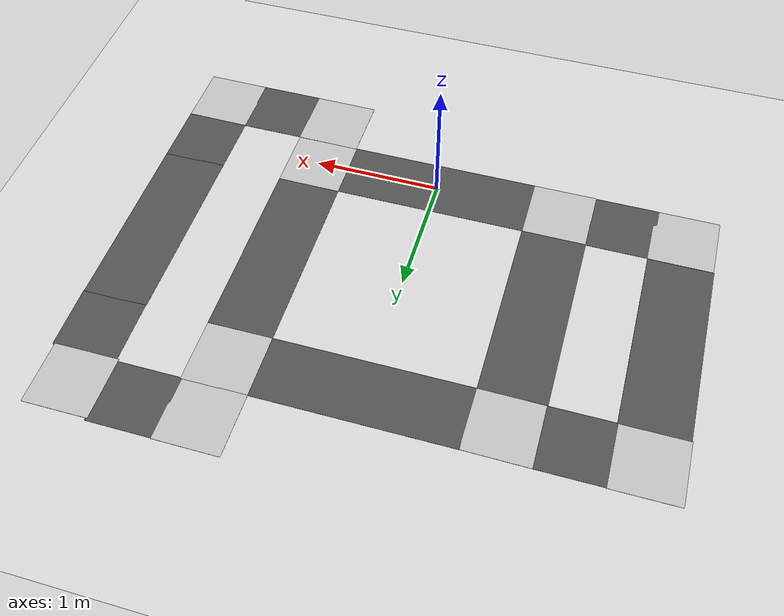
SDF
<sdf version="1.6">
 <world name="default">
  <light name="sun" type="directional">
   <pose>0 0 10 0 -0 0</pose>
   <diffuse>0.8 0.8 0.8 1</diffuse>
   <specular>0.2 0.2 0.2 1</specular>
   <attenuation>
    <range>1000</range>
    <constant>0.9</constant>
    <linear>0.01</linear>
    <quadratic>0.001</quadratic>
   </attenuation>
   <direction>-0.5 0.1 -0.9</direction>
  </light>
  <model name="ground_plane">
   <static>1</static>
   <link name="link">
    <collision name="collision">
     <geometry><plane><normal>0 0 1</normal><size>100 100</size></plane></geometry>
     <surface><friction><ode><mu>100</mu><mu2>50</mu2></ode></friction></surface>
    </collision>
    <visual name="visual">
     <cast_shadows>0</cast_shadows>
     <geometry><plane><normal>0 0 1</normal><size>100 100</size></plane></geometry>
     <material>
      <script><uri>file://media/materials/scripts/gazebo.material</uri><name>Gazebo/Grey</name></script>
     </material>
    </visual>
   </link>
  </model>
  <gravity>0 0 -9.8</gravity>
  <magnetic_field>6e-06 2.3e-05 -4.2e-05</magnetic_field>
  <atmosphere type="adiabatic"/>
  <physics name="default_physics" default="0" type="ode">
   <max_step_size>0.01</max_step_size>
   <real_time_factor>1</real_time_factor>
   <real_time_update_rate>0</real_time_update_rate>
  </physics>
  <scene><ambient>0.4 0.4 0.4 1</ambient><background>0.7 0.7 0.7 1</background><shadows>1</shadows></scene>
  <spherical_coordinates>
   <surface_model>EARTH_WGS84</surface_model>
   <latitude_deg>0</latitude_deg>
   <longitude_deg>0</longitude_deg>
   <elevation>0</elevation>
   <heading_deg>0</heading_deg>
  </spherical_coordinates>
  <model name="road_diag">
   <static>1</static>
   <link name="link">
    <collision name="collision"><geometry><box><size>0.5 0.5 0.001</size></box></geometry></collision>
    <visual name="visual">
     <cast_shadows>0</cast_shadows>
     <geometry><box><size>0.5 0.5 0.001</size></box></geometry>
     <material>
      <script>
       <uri>model://road_diag/materials/scripts</uri>
       <uri>model://road_diag/materials/textures</uri>
       <name>vrc/diag</name>
      </script>
     </material>
    </visual>
   </link>
   <pose>-1.97061 0.005999 0 0 0 -1.5708</pose>
  </model>
  <model name="road_inter">
   <static>1</static>
   <link name="link">
    <collision name="collision"><geometry><box><size>0.5 0.5 0.001</size></box></geometry></collision>
    <visual name="visual">
     <cast_shadows>0</cast_shadows>
     <geometry><box><size>0.5 0.5 0.001</size></box></geometry>
     <material>
      <script>
       <uri>model://road_inter/materials/scripts</uri>
       <uri>model://road_inter/materials/textures</uri>
       <name>vrc/inter</name>
      </script>
     </material>
    </visual>
   </link>
   <pose>0.999878 2.00028 0 0 -0 1.57368</pose>
  </model>
  <model name="road_plane_3">
   <static>1</static>
   <link name="link">
    <collision name="collision"><geometry><box><size>1.5 0.5 0.001</size></box></geometry></collision>
    <visual name="visual">
     <cast_shadows>0</cast_shadows>
     <geometry><box><size>1.5 0.5 0.001</size></box></geometry>
     <material>
      <script>
       <uri>model://road_plane_3/materials/scripts</uri>
       <uri>model://road_plane_3/materials/textures</uri>
       <name>vrc/road3</name>
      </script>
     </material>
    </visual>
   </link>
  </model>
  <model name="road_plane_3_0">
   <static>1</static>
   <link name="link">
    <collision name="collision"><geometry><box><size>1.5 0.5 0.001</size></box></geometry></collision>
    <visual name="visual">
     <cast_shadows>0</cast_shadows>
     <geometry><box><size>1.5 0.5 0.001</size></box></geometry>
     <material>
      <script>
       <uri>model://road_plane_3/materials/scripts</uri>
       <uri>model://road_plane_3/materials/textures</uri>
       <name>vrc/road3</name>
      </script>
     </material>
    </visual>
   </link>
   <pose>-1 1 0 0 -0 1.5708</pose>
  </model>
  <model name="road_plane_3_1">
   <static>1</static>
   <link name="link">
    <collision name="collision"><geometry><box><size>1.5 0.5 0.001</size></box></geometry></collision>
    <visual name="visual">
     <cast_shadows>0</cast_shadows>
     <geometry><box><size>1.5 0.5 0.001</size></box></geometry>
     <material>
      <script>
       <uri>model://road_plane_3/materials/scripts</uri>
       <uri>model://road_plane_3/materials/textures</uri>
       <name>vrc/road3</name>
      </script>
     </material>
    </visual>
   </link>
   <pose>1 1 0 0 0 -1.5708</pose>
  </model>
  <model name="road_plane_0">
   <static>1</static>
   <link name="link">
    <collision name="collision"><geometry><box><size>0.5 0.5 0.001</size></box></geometry></collision>
    <visual name="visual">
     <cast_shadows>0</cast_shadows>
     <geometry><box><size>0.5 0.5 0.001</size></box></geometry>
     <material>
      <script>
       <uri>model://road_plane/materials/scripts</uri>
       <uri>model://road_plane/materials/textures</uri>
       <name>vrc/road</name>
      </script>
     </material>
    </visual>
   </link>
   <pose>-1.49463 2.00244 0 0 -0 0</pose>
  </model>
  <model name="road_plane_1">
   <static>1</static>
   <link name="link">
    <collision name="collision"><geometry><box><size>0.5 0.5 0.001</size></box></geometry></collision>
    <visual name="visual">
     <cast_shadows>0</cast_shadows>
     <geometry><box><size>0.5 0.5 0.001</size></box></geometry>
     <material>
      <script>
       <uri>model://road_plane/materials/scripts</uri>
       <uri>model://road_plane/materials/textures</uri>
       <name>vrc/road</name>
      </script>
     </material>
    </visual>
   </link>
   <pose>-1.49826 0.004786 0 0 -0 0</pose>
  </model>
  <model name="road_diag_0">
   <static>1</static>
   <link name="link">
    <collision name="collision"><geometry><box><size>0.5 0.5 0.001</size></box></geometry></collision>
    <visual name="visual">
     <cast_shadows>0</cast_shadows>
     <geometry><box><size>0.5 0.5 0.001</size></box></geometry>
     <material>
      <script>
       <uri>model://road_diag/materials/scripts</uri>
       <uri>model://road_diag/materials/textures</uri>
       <name>vrc/diag</name>
      </script>
     </material>
    </visual>
   </link>
   <pose>1.00274 -0.498861 0 0 0 -1.57984</pose>
  </model>
  <model name="road_plane_3_3">
   <static>1</static>
   <link name="link">
    <collision name="collision"><geometry><box><size>1.5 0.5 0.001</size></box></geometry></collision>
    <visual name="visual">
     <cast_shadows>0</cast_shadows>
     <geometry><box><size>1.5 0.5 0.001</size></box></geometry>
     <material>
      <script>
       <uri>model://road_plane_3/materials/scripts</uri>
       <uri>model://road_plane_3/materials/textures</uri>
       <name>vrc/road3</name>
      </script>
     </material>
    </visual>
   </link>
   <pose>0 2 0 0 -0 0</pose>
  </model>
  <model name="road_diag_1">
   <static>1</static>
   <link name="link">
    <collision name="collision"><geometry><box><size>0.5 0.5 0.001</size></box></geometry></collision>
    <visual name="visual">
     <cast_shadows>0</cast_shadows>
     <geometry><box><size>0.5 0.5 0.001</size></box></geometry>
     <material>
      <script>
       <uri>model://road_diag/materials/scripts</uri>
       <uri>model://road_diag/materials/textures</uri>
       <name>vrc/diag</name>
      </script>
     </material>
    </visual>
   </link>
   <pose>0.99852 2.49657 0 0 -0 3.14018</pose>
  </model>
  <model name="road_diag_2">
   <static>1</static>
   <link name="link">
    <collision name="collision"><geometry><box><size>0.5 0.5 0.001</size></box></geometry></collision>
    <visual name="visual">
     <cast_shadows>0</cast_shadows>
     <geometry><box><size>0.5 0.5 0.001</size></box></geometry>
     <material>
      <script>
       <uri>model://road_diag/materials/scripts</uri>
       <uri>model://road_diag/materials/textures</uri>
       <name>vrc/diag</name>
      </script>
     </material>
    </visual>
   </link>
   <pose>-1.97954 2.00555 0 0 -0 3.14159</pose>
  </model>
  <light name="user_directional_light_0" type="directional">
   <pose>-0.125952 -0.010846 1 0 -0 0</pose>
   <diffuse>0.5 0.5 0.5 1</diffuse>
   <specular>0.1 0.1 0.1 1</specular>
   <direction>0.1 0.1 -0.9</direction>
   <attenuation>
    <range>20</range>
    <constant>0.5</constant>
    <linear>0.01</linear>
    <quadratic>0.001</quadratic>
   </attenuation>
  </light>
  <model name="road_inter_clone">
   <static>1</static>
   <link name="link">
    <collision name="collision"><geometry><box><size>0.5 0.5 0.001</size></box></geometry></collision>
    <visual name="visual">
     <cast_shadows>0</cast_shadows>
     <geometry><box><size>0.5 0.5 0.001</size></box></geometry>
     <material>
      <script>
       <uri>model://road_inter/materials/scripts</uri>
       <uri>model://road_inter/materials/textures</uri>
       <name>vrc/inter</name>
      </script>
     </material>
    </visual>
   </link>
   <pose>-0.996933 2.00029 0 0 -0 3.13389</pose>
  </model>
  <model name="road_inter_clone_clone">
   <static>1</static>
   <link name="link">
    <collision name="collision"><geometry><box><size>0.5 0.5 0.001</size></box></geometry></collision>
    <visual name="visual">
     <cast_shadows>0</cast_shadows>
     <geometry><box><size>0.5 0.5 0.001</size></box></geometry>
     <material>
      <script>
       <uri>model://road_inter/materials/scripts</uri>
       <uri>model://road_inter/materials/textures</uri>
       <name>vrc/inter</name>
      </script>
     </material>
    </visual>
   </link>
   <pose>-1.00063 0.000325 0 0 -0 0.001472</pose>
  </model>
  <model name="road_inter_clone_clone_clone">
   <static>1</static>
   <link name="link">
    <collision name="collision"><geometry><box><size>0.5 0.5 0.001</size></box></geometry></collision>
    <visual name="visual">
     <cast_shadows>0</cast_shadows>
     <geometry><box><size>0.5 0.5 0.001</size></box></geometry>
     <material>
      <script>
       <uri>model://road_inter/materials/scripts</uri>
       <uri>model://road_inter/materials/textures</uri>
       <name>vrc/inter</name>
      </script>
     </material>
    </visual>
   </link>
   <pose>0.999701 0.001425 0 0 -0 1.56688</pose>
  </model>
  <model name="road_plane_0_clone">
   <static>1</static>
   <link name="link">
    <collision name="collision"><geometry><box><size>0.5 0.5 0.001</size></box></geometry></collision>
    <visual name="visual">
     <cast_shadows>0</cast_shadows>
     <geometry><box><size>0.5 0.5 0.001</size></box></geometry>
     <material>
      <script>
       <uri>model://road_plane/materials/scripts</uri>
       <uri>model://road_plane/materials/textures</uri>
       <name>vrc/road</name>
      </script>
     </material>
    </visual>
   </link>
   <pose>1.48707 2.49293 0 0 -0 0</pose>
  </model>
  <model name="road_plane_0_clone_0">
   <static>1</static>
   <link name="link">
    <collision name="collision"><geometry><box><size>0.5 0.5 0.001</size></box></geometry></collision>
    <visual name="visual">
     <cast_shadows>0</cast_shadows>
     <geometry><box><size>0.5 0.5 0.001</size></box></geometry>
     <material>
      <script>
       <uri>model://road_plane/materials/scripts</uri>
       <uri>model://road_plane/materials/textures</uri>
       <name>vrc/road</name>
      </script>
     </material>
    </visual>
   </link>
   <pose>1.4972 -0.502033 0 0 -0 0</pose>
  </model>
  <model name="road_diag_0_clone">
   <static>1</static>
   <link name="link">
    <collision name="collision"><geometry><box><size>0.5 0.5 0.001</size></box></geometry></collision>
    <visual name="visual">
     <cast_shadows>0</cast_shadows>
     <geometry><box><size>0.5 0.5 0.001</size></box></geometry>
     <material>
      <script>
       <uri>model://road_diag/materials/scripts</uri>
       <uri>model://road_diag/materials/textures</uri>
       <name>vrc/diag</name>
      </script>
     </material>
    </visual>
   </link>
   <pose>1.991 -0.506084 0 0 0 -0.010155</pose>
  </model>
  <model name="road_diag_0_clone_0">
   <static>1</static>
   <link name="link">
    <collision name="collision"><geometry><box><size>0.5 0.5 0.001</size></box></geometry></collision>
    <visual name="visual">
     <cast_shadows>0</cast_shadows>
     <geometry><box><size>0.5 0.5 0.001</size></box></geometry>
     <material>
      <script>
       <uri>model://road_diag/materials/scripts</uri>
       <uri>model://road_diag/materials/textures</uri>
       <name>vrc/diag</name>
      </script>
     </material>
    </visual>
   </link>
   <pose>1.97472 2.47481 0 0 -0 1.57413</pose>
  </model>
  <model name="road_plane_2_clone_5">
   <static>1</static>
   <link name="link">
    <collision name="collision"><geometry><box><size>0.5 0.5 0.001</size></box></geometry></collision>
    <visual name="visual">
     <cast_shadows>0</cast_shadows>
     <geometry><box><size>0.5 0.5 0.001</size></box></geometry>
     <material>
      <script>
       <uri>model://road_plane/materials/scripts</uri>
       <uri>model://road_plane/materials/textures</uri>
       <name>vrc/road</name>
      </script>
     </material>
    </visual>
   </link>
   <pose>1.99284 -0.006455 0 0 -0 1.5708</pose>
  </model>
  <model name="road_plane_3_1_clone">
   <static>1</static>
   <link name="link">
    <collision name="collision"><geometry><box><size>1.5 0.5 0.001</size></box></geometry></collision>
    <visual name="visual">
     <cast_shadows>0</cast_shadows>
     <geometry><box><size>1.5 0.5 0.001</size></box></geometry>
     <material>
      <script>
       <uri>model://road_plane_3/materials/scripts</uri>
       <uri>model://road_plane_3/materials/textures</uri>
       <name>vrc/road3</name>
      </script>
     </material>
    </visual>
   </link>
   <pose>1.99269 0.987987 0 0 0 -1.5708</pose>
  </model>
  <model name="road_plane_2_clone_5_clone">
   <static>1</static>
   <link name="link">
    <collision name="collision"><geometry><box><size>0.5 0.5 0.001</size></box></geometry></collision>
    <visual name="visual">
     <cast_shadows>0</cast_shadows>
     <geometry><box><size>0.5 0.5 0.001</size></box></geometry>
     <material>
      <script>
       <uri>model://road_plane/materials/scripts</uri>
       <uri>model://road_plane/materials/textures</uri>
       <name>vrc/road</name>
      </script>
     </material>
    </visual>
   </link>
   <pose>1.99311 1.98494 0 0 0 -1.55892</pose>
  </model>
  <model name="road_plane_3_0_clone">
   <static>1</static>
   <link name="link">
    <collision name="collision"><geometry><box><size>1.5 0.5 0.001</size></box></geometry></collision>
    <visual name="visual">
     <cast_shadows>0</cast_shadows>
     <geometry><box><size>1.5 0.5 0.001</size></box></geometry>
     <material>
      <script>
       <uri>model://road_plane_3/materials/scripts</uri>
       <uri>model://road_plane_3/materials/textures</uri>
       <name>vrc/road3</name>
      </script>
     </material>
    </visual>
   </link>
   <pose>-1.97389 1.00751 0 0 -0 1.5708</pose>
  </model>
 </world>
</sdf>
